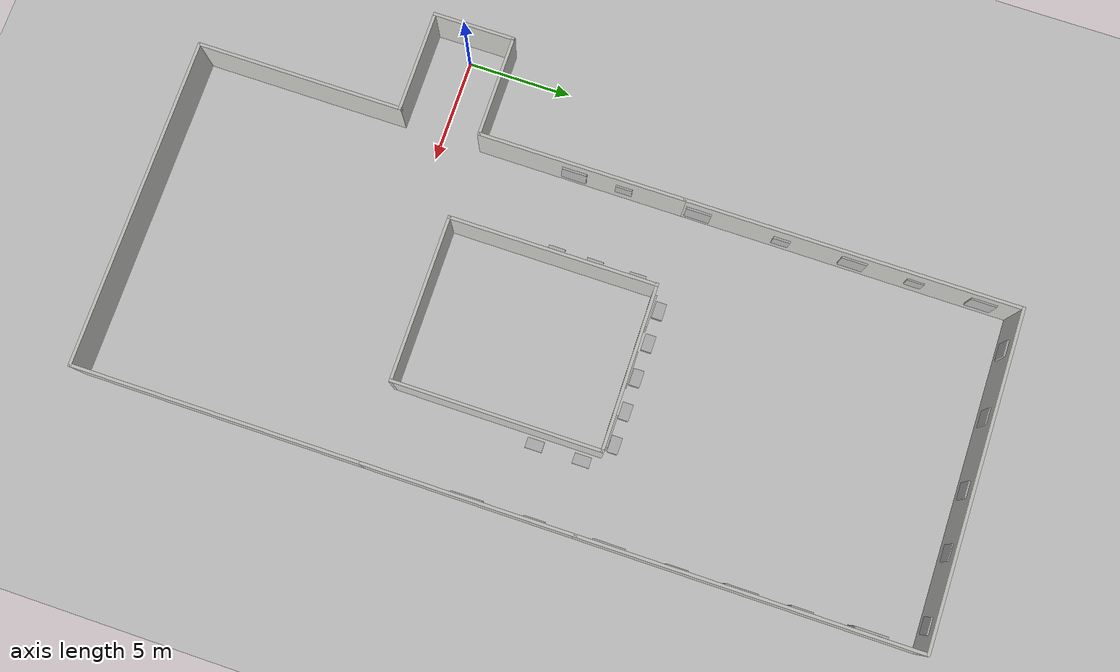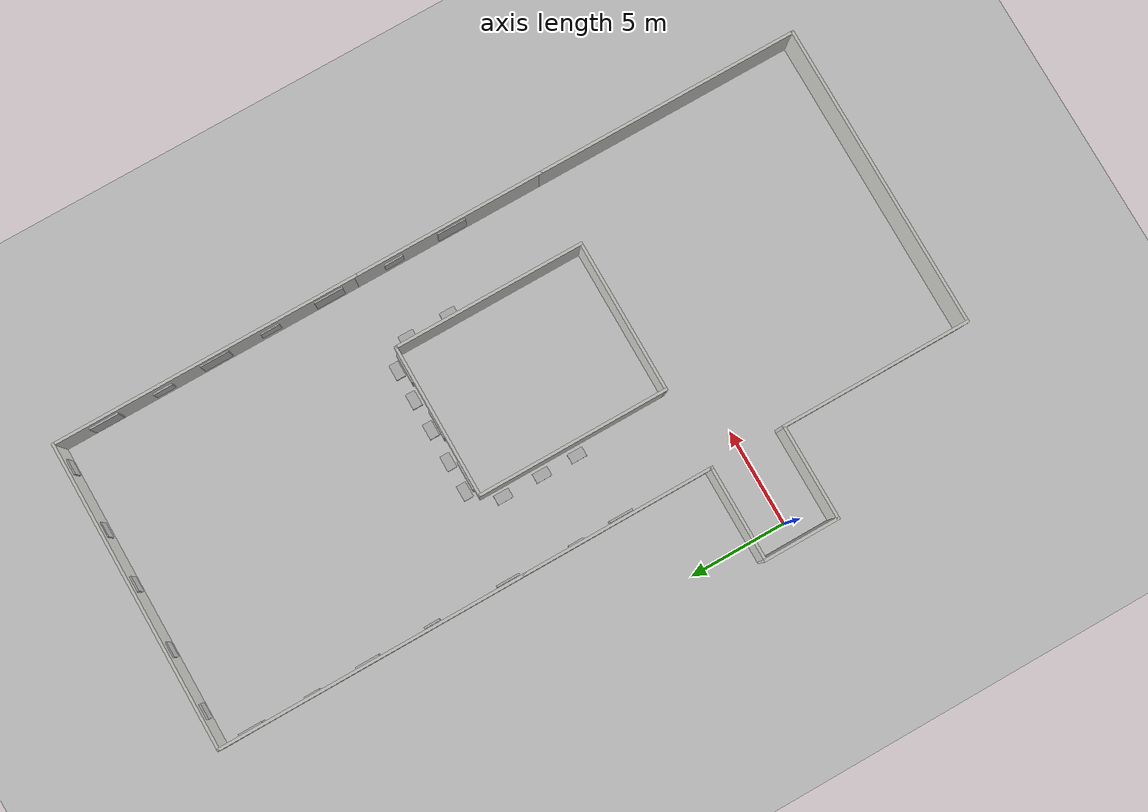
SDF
<sdf version="1.6">
 <world name="default">
  <model name="ground_plane">
   <static>1</static>
   <link name="link">
    <collision name="collision">
     <geometry><plane><normal>0 0 1</normal><size>100 100</size></plane></geometry>
     <surface>
      <contact><collide_bitmask>65535</collide_bitmask></contact>
      <friction><ode><mu>100</mu><mu2>50</mu2></ode></friction>
     </surface>
    </collision>
    <visual name="visual">
     <cast_shadows>0</cast_shadows>
     <geometry><plane><normal>0 0 1</normal><size>100 100</size></plane></geometry>
     <material>
      <script><uri>file://media/materials/scripts/gazebo.material</uri><name>Gazebo/Grey</name></script>
     </material>
    </visual>
   </link>
  </model>
  <model name="chair3_clone_4">
   <link name="link">
    <inertial>
     <mass>3</mass>
     <inertia><ixx>1</ixx><ixy>0</ixy><ixz>0</ixz><iyy>1</iyy><iyz>0</iyz><izz>1</izz></inertia>
    </inertial>
    <collision name="left1">
     <pose>0 0.225 0.2 0 -0 1.57</pose>
     <geometry><box><size>0.05 0.05 0.2</size></box></geometry>
    </collision>
    <visual name="visual1">
     <pose>0 0.225 0.2 0 -0 1.57</pose>
     <geometry><box><size>0.05 0.05 0.2</size></box></geometry>
     <material>
      <script>
       <uri>model://chair3/materials/test_texture_leg.material</uri>
       <name>TestTexturechairleg3</name>
      </script>
     </material>
    </visual>
    <collision name="right1">
     <pose>0.75 0.225 0.2 0 -0 1.57</pose>
     <geometry><box><size>0.05 0.05 0.2</size></box></geometry>
    </collision>
    <visual name="visual2">
     <pose>0.75 0.225 0.2 0 -0 1.57</pose>
     <geometry><box><size>0.05 0.05 0.2</size></box></geometry>
     <material>
      <script>
       <uri>model://chair3/materials/test_texture_leg.material</uri>
       <name>TestTexturechairleg3</name>
      </script>
     </material>
    </visual>
    <collision name="left2">
     <pose>0 -0.225 0.2 0 -0 1.57</pose>
     <geometry><box><size>0.05 0.05 0.2</size></box></geometry>
    </collision>
    <visual name="visual3">
     <pose>0 -0.225 0.2 0 -0 1.57</pose>
     <geometry><box><size>0.05 0.05 0.2</size></box></geometry>
     <material>
      <script>
       <uri>model://chair3/materials/test_texture_leg.material</uri>
       <name>TestTexturechairleg3</name>
      </script>
     </material>
    </visual>
    <collision name="right2">
     <pose>0.75 -0.225 0.2 0 -0 1.57</pose>
     <geometry><box><size>0.05 0.05 0.2</size></box></geometry>
    </collision>
    <visual name="visual4">
     <pose>0.75 -0.225 0.2 0 -0 1.57</pose>
     <geometry><box><size>0.05 0.05 0.2</size></box></geometry>
     <material>
      <script>
       <uri>model://chair3/materials/test_texture_leg.material</uri>
       <name>TestTexturechairleg3</name>
      </script>
     </material>
    </visual>
    <collision name="top">
     <pose>0.375 0 0.375 0 -0 0</pose>
     <geometry><box><size>0.8 0.5 0.05</size></box></geometry>
    </collision>
    <visual name="visual11">
     <pose>0.375 0 0.375 0 -0 0</pose>
     <geometry><box><size>0.8 0.5 0.05</size></box></geometry>
     <material>
      <script>
       <uri>model://chair3/materials/test_texture_plane.material</uri>
       <name>TestTexturechairplane3</name>
      </script>
     </material>
    </visual>
    <collision name="top2">
     <pose>0.375 0 0.325 0 -0 0</pose>
     <geometry><box><size>0.8 0.5 0.05</size></box></geometry>
    </collision>
    <visual name="visual12">
     <pose>0.375 0 0.325 0 -0 0</pose>
     <geometry><box><size>0.8 0.5 0.05</size></box></geometry>
     <material>
      <script>
       <uri>model://chair3/materials/test_texture_leg.material</uri>
       <name>TestTexturechairleg3</name>
      </script>
     </material>
    </visual>
   </link>
   <pose>7.58346 6.47339 -0.090003 -1e-06 -0 1.56992</pose>
  </model>
  <model name="art10">
   <static>1</static>
   <pose>19.6761 19.3333 1.42373 0 -0 1.57</pose>
   <link name="link">
    <inertial>
     <mass>1</mass>
     <inertia><ixx>0.083</ixx><ixy>0</ixy><ixz>0</ixz><iyy>0.083</iyy><iyz>0</iyz><izz>0.083</izz></inertia>
    </inertial>
    <collision name="collision"><geometry><box><size>1.5 0.1 1.5</size></box></geometry></collision>
    <visual name="visual">
     <geometry><box><size>1.5 0.1 1.5</size></box></geometry>
     <material>
      <script><uri>model://art10/materials/test_texture10.material</uri><name>TestTexture10</name></script>
     </material>
    </visual>
   </link>
  </model>
  <model name="art5">
   <static>1</static>
   <pose>5.74877 27.5112 1.29284 0 -0 0</pose>
   <link name="link">
    <inertial>
     <mass>1</mass>
     <inertia><ixx>0.083</ixx><ixy>0</ixy><ixz>0</ixz><iyy>0.083</iyy><iyz>0</iyz><izz>0.083</izz></inertia>
    </inertial>
    <collision name="collision"><geometry><box><size>0.8 0.1 1.2</size></box></geometry></collision>
    <visual name="visual">
     <geometry><box><size>0.8 0.1 1.2</size></box></geometry>
     <material>
      <script><uri>model://art5/materials/test_texture5.material</uri><name>TestTexture5</name></script>
     </material>
    </visual>
   </link>
  </model>
  <model name="art7">
   <static>1</static>
   <pose>4.0398 8.9814 1.28154 0 0 -1.5637</pose>
   <link name="link">
    <inertial>
     <mass>1</mass>
     <inertia><ixx>0.083</ixx><ixy>0</ixy><ixz>0</ixz><iyy>0.083</iyy><iyz>0</iyz><izz>0.083</izz></inertia>
    </inertial>
    <collision name="collision"><geometry><box><size>0.8 0.1 0.8</size></box></geometry></collision>
    <visual name="visual">
     <geometry><box><size>0.8 0.1 0.8</size></box></geometry>
     <material>
      <script><uri>model://art7/materials/test_texture7.material</uri><name>TestTexture7</name></script>
     </material>
    </visual>
   </link>
  </model>
  <model name="art9">
   <static>1</static>
   <pose>14.9277 11.8871 1.32882 0 -0 0</pose>
   <link name="link">
    <inertial>
     <mass>1</mass>
     <inertia><ixx>0.083</ixx><ixy>0</ixy><ixz>0</ixz><iyy>0.083</iyy><iyz>0</iyz><izz>0.083</izz></inertia>
    </inertial>
    <collision name="collision"><geometry><box><size>1.5 0.1 1.5</size></box></geometry></collision>
    <visual name="visual">
     <geometry><box><size>1.5 0.1 1.5</size></box></geometry>
     <material>
      <script><uri>model://art9/materials/test_texture9.material</uri><name>TestTexture9</name></script>
     </material>
    </visual>
   </link>
  </model>
  <model name="art4_clone">
   <static>1</static>
   <pose>4.07892 6.58142 1.30656 0 -0 1.57</pose>
   <link name="link">
    <inertial>
     <mass>1</mass>
     <inertia><ixx>0.083</ixx><ixy>0</ixy><ixz>0</ixz><iyy>0.083</iyy><iyz>0</iyz><izz>0.083</izz></inertia>
    </inertial>
    <collision name="collision"><geometry><box><size>1.2 0.1 1.2</size></box></geometry></collision>
    <visual name="visual">
     <geometry><box><size>1.2 0.1 1.2</size></box></geometry>
     <material>
      <script><uri>model://art4/materials/test_texture4.material</uri><name>TestTexture4</name></script>
     </material>
    </visual>
   </link>
  </model>
  <model name="art4_clone_clone">
   <static>1</static>
   <pose>4.07996 12.5675 1.30656 0 -0 1.57</pose>
   <link name="link">
    <inertial>
     <mass>1</mass>
     <inertia><ixx>0.083</ixx><ixy>0</ixy><ixz>0</ixz><iyy>0.083</iyy><iyz>0</iyz><izz>0.083</izz></inertia>
    </inertial>
    <collision name="collision"><geometry><box><size>1.2 0.1 1.2</size></box></geometry></collision>
    <visual name="visual">
     <geometry><box><size>1.2 0.1 1.2</size></box></geometry>
     <material>
      <script><uri>model://art4/materials/test_texture4.material</uri><name>TestTexture4</name></script>
     </material>
    </visual>
   </link>
  </model>
  <model name="art4_clone_clone_clone_clone">
   <static>1</static>
   <pose>4.04204 19.9663 1.30656 0 -0 1.57</pose>
   <link name="link">
    <inertial>
     <mass>1</mass>
     <inertia><ixx>0.083</ixx><ixy>0</ixy><ixz>0</ixz><iyy>0.083</iyy><iyz>0</iyz><izz>0.083</izz></inertia>
    </inertial>
    <collision name="collision"><geometry><box><size>1.2 0.1 1.2</size></box></geometry></collision>
    <visual name="visual">
     <geometry><box><size>1.2 0.1 1.2</size></box></geometry>
     <material>
      <script><uri>model://art4/materials/test_texture4.material</uri><name>TestTexture4</name></script>
     </material>
    </visual>
   </link>
  </model>
  <model name="art5_clone">
   <static>1</static>
   <pose>8.96533 27.5376 1.29284 0 -0 0</pose>
   <link name="link">
    <inertial>
     <mass>1</mass>
     <inertia><ixx>0.083</ixx><ixy>0</ixy><ixz>0</ixz><iyy>0.083</iyy><iyz>0</iyz><izz>0.083</izz></inertia>
    </inertial>
    <collision name="collision"><geometry><box><size>0.8 0.1 1.2</size></box></geometry></collision>
    <visual name="visual">
     <geometry><box><size>0.8 0.1 1.2</size></box></geometry>
     <material>
      <script><uri>model://art5/materials/test_texture5.material</uri><name>TestTexture5</name></script>
     </material>
    </visual>
   </link>
  </model>
  <model name="art5_clone_0">
   <static>1</static>
   <pose>12.392 27.5199 1.29284 0 -0 0</pose>
   <link name="link">
    <inertial>
     <mass>1</mass>
     <inertia><ixx>0.083</ixx><ixy>0</ixy><ixz>0</ixz><iyy>0.083</iyy><iyz>0</iyz><izz>0.083</izz></inertia>
    </inertial>
    <collision name="collision"><geometry><box><size>0.8 0.1 1.2</size></box></geometry></collision>
    <visual name="visual">
     <geometry><box><size>0.8 0.1 1.2</size></box></geometry>
     <material>
      <script><uri>model://art5/materials/test_texture5.material</uri><name>TestTexture5</name></script>
     </material>
    </visual>
   </link>
  </model>
  <model name="art5_clone_1">
   <static>1</static>
   <pose>15.2645 27.5529 1.29284 0 -0 0</pose>
   <link name="link">
    <inertial>
     <mass>1</mass>
     <inertia><ixx>0.083</ixx><ixy>0</ixy><ixz>0</ixz><iyy>0.083</iyy><iyz>0</iyz><izz>0.083</izz></inertia>
    </inertial>
    <collision name="collision"><geometry><box><size>0.8 0.1 1.2</size></box></geometry></collision>
    <visual name="visual">
     <geometry><box><size>0.8 0.1 1.2</size></box></geometry>
     <material>
      <script><uri>model://art5/materials/test_texture5.material</uri><name>TestTexture5</name></script>
     </material>
    </visual>
   </link>
  </model>
  <model name="art5_clone_2">
   <static>1</static>
   <pose>18.5803 27.524 1.29284 0 -0 0</pose>
   <link name="link">
    <inertial>
     <mass>1</mass>
     <inertia><ixx>0.083</ixx><ixy>0</ixy><ixz>0</ixz><iyy>0.083</iyy><iyz>0</iyz><izz>0.083</izz></inertia>
    </inertial>
    <collision name="collision"><geometry><box><size>0.8 0.1 1.2</size></box></geometry></collision>
    <visual name="visual">
     <geometry><box><size>0.8 0.1 1.2</size></box></geometry>
     <material>
      <script><uri>model://art5/materials/test_texture5.material</uri><name>TestTexture5</name></script>
     </material>
    </visual>
   </link>
  </model>
  <model name="art10_clone_0">
   <static>1</static>
   <pose>19.667 13.3108 1.399 0 -0 1.57</pose>
   <link name="link">
    <inertial>
     <mass>1</mass>
     <inertia><ixx>0.083</ixx><ixy>0</ixy><ixz>0</ixz><iyy>0.083</iyy><iyz>0</iyz><izz>0.083</izz></inertia>
    </inertial>
    <collision name="collision"><geometry><box><size>1.5 0.1 1.5</size></box></geometry></collision>
    <visual name="visual">
     <geometry><box><size>1.5 0.1 1.5</size></box></geometry>
     <material>
      <script><uri>model://art10/materials/test_texture10.material</uri><name>TestTexture10</name></script>
     </material>
    </visual>
   </link>
  </model>
  <model name="art10_clone_1_clone">
   <static>1</static>
   <pose>19.6757 6.74799 1.399 0 -0 1.57</pose>
   <link name="link">
    <inertial>
     <mass>1</mass>
     <inertia><ixx>0.083</ixx><ixy>0</ixy><ixz>0</ixz><iyy>0.083</iyy><iyz>0</iyz><izz>0.083</izz></inertia>
    </inertial>
    <collision name="collision"><geometry><box><size>1.5 0.1 1.5</size></box></geometry></collision>
    <visual name="visual">
     <geometry><box><size>1.5 0.1 1.5</size></box></geometry>
     <material>
      <script><uri>model://art10/materials/test_texture10.material</uri><name>TestTexture10</name></script>
     </material>
    </visual>
   </link>
  </model>
  <model name="art7_clone">
   <static>1</static>
   <pose>4.08486 16.5609 1.28154 0 0 -1.5637</pose>
   <link name="link">
    <inertial>
     <mass>1</mass>
     <inertia><ixx>0.083</ixx><ixy>0</ixy><ixz>0</ixz><iyy>0.083</iyy><iyz>0</iyz><izz>0.083</izz></inertia>
    </inertial>
    <collision name="collision"><geometry><box><size>0.8 0.1 0.8</size></box></geometry></collision>
    <visual name="visual">
     <geometry><box><size>0.8 0.1 0.8</size></box></geometry>
     <material>
      <script><uri>model://art7/materials/test_texture7.material</uri><name>TestTexture7</name></script>
     </material>
    </visual>
   </link>
  </model>
  <model name="art9_clone">
   <static>1</static>
   <pose>11.9392 11.8718 1.32882 0 -0 0</pose>
   <link name="link">
    <inertial>
     <mass>1</mass>
     <inertia><ixx>0.083</ixx><ixy>0</ixy><ixz>0</ixz><iyy>0.083</iyy><iyz>0</iyz><izz>0.083</izz></inertia>
    </inertial>
    <collision name="collision"><geometry><box><size>1.5 0.1 1.5</size></box></geometry></collision>
    <visual name="visual">
     <geometry><box><size>1.5 0.1 1.5</size></box></geometry>
     <material>
      <script><uri>model://art9/materials/test_texture9.material</uri><name>TestTexture9</name></script>
     </material>
    </visual>
   </link>
  </model>
  <model name="art9_clone_0">
   <static>1</static>
   <pose>9.20239 11.8915 1.32882 0 -0 0</pose>
   <link name="link">
    <inertial>
     <mass>1</mass>
     <inertia><ixx>0.083</ixx><ixy>0</ixy><ixz>0</ixz><iyy>0.083</iyy><iyz>0</iyz><izz>0.083</izz></inertia>
    </inertial>
    <collision name="collision"><geometry><box><size>1.5 0.1 1.5</size></box></geometry></collision>
    <visual name="visual">
     <geometry><box><size>1.5 0.1 1.5</size></box></geometry>
     <material>
      <script><uri>model://art9/materials/test_texture9.material</uri><name>TestTexture9</name></script>
     </material>
    </visual>
   </link>
  </model>
  <model name="art8">
   <static>1</static>
   <pose>19.679 16.456 1.35644 0 -0 1.57181</pose>
   <link name="link">
    <inertial>
     <mass>1</mass>
     <inertia><ixx>0.083</ixx><ixy>0</ixy><ixz>0</ixz><iyy>0.083</iyy><iyz>0</iyz><izz>0.083</izz></inertia>
    </inertial>
    <collision name="collision"><geometry><box><size>1 0.1 1</size></box></geometry></collision>
    <visual name="visual">
     <geometry><box><size>1 0.1 1</size></box></geometry>
     <material>
      <script><uri>model://art8/materials/test_texture8.material</uri><name>TestTexture8</name></script>
     </material>
    </visual>
   </link>
  </model>
  <model name="art8_clone">
   <static>1</static>
   <pose>19.664 9.86122 1.35644 0 -0 1.57181</pose>
   <link name="link">
    <inertial>
     <mass>1</mass>
     <inertia><ixx>0.083</ixx><ixy>0</ixy><ixz>0</ixz><iyy>0.083</iyy><iyz>0</iyz><izz>0.083</izz></inertia>
    </inertial>
    <collision name="collision"><geometry><box><size>1 0.1 1</size></box></geometry></collision>
    <visual name="visual">
     <geometry><box><size>1 0.1 1</size></box></geometry>
     <material>
      <script><uri>model://art8/materials/test_texture8.material</uri><name>TestTexture8</name></script>
     </material>
    </visual>
   </link>
  </model>
  <model name="dtaka_museum1_1">
   <pose>9.4253 7.9286 0 0 -0 0</pose>
   <link name="Wall_100">
    <collision name="Wall_100_Collision">
     <geometry><box><size>16 0.15 2.5</size></box></geometry>
     <pose>0 0 1.25 0 -0 0</pose>
    </collision>
    <visual name="Wall_100_Visual">
     <pose>0 0 1.25 0 -0 0</pose>
     <geometry><box><size>16 0.15 2.5</size></box></geometry>
     <material>
      <script><uri>file://media/materials/scripts/gazebo.material</uri><name>Gazebo/CeilingTiled</name></script>
      <ambient>1 1 1 1</ambient>
     </material>
     <meta><layer>0</layer></meta>
    </visual>
    <pose>2.425 -19.7 0 0 -0 0</pose>
   </link>
   <link name="Wall_102">
    <collision name="Wall_102_Collision">
     <geometry><box><size>13.85 0.15 2.5</size></box></geometry>
     <pose>0 0 1.25 0 -0 0</pose>
    </collision>
    <visual name="Wall_102_Visual">
     <pose>0 0 1.25 0 -0 0</pose>
     <geometry><box><size>13.85 0.15 2.5</size></box></geometry>
     <material>
      <script><uri>file://media/materials/scripts/gazebo.material</uri><name>Gazebo/CeilingTiled</name></script>
      <ambient>1 1 1 1</ambient>
     </material>
     <meta><layer>0</layer></meta>
    </visual>
    <pose>10.35 -12.85 0 0 -0 1.5708</pose>
   </link>
   <link name="Wall_104">
    <collision name="Wall_104_Collision">
     <geometry><box><size>10 0.15 2.5</size></box></geometry>
     <pose>0 0 1.25 0 -0 0</pose>
    </collision>
    <visual name="Wall_104_Visual">
     <pose>0 0 1.25 0 -0 0</pose>
     <geometry><box><size>10 0.15 2.5</size></box></geometry>
     <material>
      <script><uri>file://media/materials/scripts/gazebo.material</uri><name>Gazebo/CeilingTiled</name></script>
      <ambient>1 1 1 1</ambient>
     </material>
     <meta><layer>0</layer></meta>
    </visual>
    <pose>10.35 -1.075 0 0 -0 1.5708</pose>
   </link>
   <link name="Wall_106">
    <collision name="Wall_106_Collision">
     <geometry><box><size>16 0.15 2.5</size></box></geometry>
     <pose>0 0 1.25 0 -0 0</pose>
    </collision>
    <visual name="Wall_106_Visual">
     <pose>0 0 1.25 0 -0 0</pose>
     <geometry><box><size>16 0.15 2.5</size></box></geometry>
     <material>
      <script><uri>file://media/materials/scripts/gazebo.material</uri><name>Gazebo/CeilingTiled</name></script>
      <ambient>1 1 1 1</ambient>
     </material>
     <meta><layer>0</layer></meta>
    </visual>
    <pose>10.35 11.775 0 0 -0 1.5708</pose>
   </link>
   <link name="Wall_108">
    <collision name="Wall_108_Collision">
     <geometry><box><size>16 0.15 2.5</size></box></geometry>
     <pose>0 0 1.25 0 -0 0</pose>
    </collision>
    <visual name="Wall_108_Visual">
     <pose>0 0 1.25 0 -0 0</pose>
     <geometry><box><size>16 0.15 2.5</size></box></geometry>
     <material>
      <script><uri>file://media/materials/scripts/gazebo.material</uri><name>Gazebo/CeilingTiled</name></script>
      <ambient>1 1 1 1</ambient>
     </material>
     <meta><layer>0</layer></meta>
    </visual>
    <pose>2.425 19.7 0 0 -0 3.14159</pose>
   </link>
   <link name="Wall_110">
    <collision name="Wall_110_Collision">
     <geometry><box><size>16 0.15 2.5</size></box></geometry>
     <pose>0 0 1.25 0 -0 0</pose>
    </collision>
    <visual name="Wall_110_Visual">
     <pose>0 0 1.25 0 -0 0</pose>
     <geometry><box><size>16 0.15 2.5</size></box></geometry>
     <material>
      <script><uri>file://media/materials/scripts/gazebo.material</uri><name>Gazebo/CeilingTiled</name></script>
      <ambient>1 1 1 1</ambient>
     </material>
     <meta><layer>0</layer></meta>
    </visual>
    <pose>-5.5 11.775 0 0 -0 -1.5708</pose>
   </link>
   <link name="Wall_112">
    <collision name="Wall_112_Collision">
     <geometry><box><size>8 0.15 2.5</size></box></geometry>
     <pose>0 0 1.25 0 -0 0</pose>
    </collision>
    <visual name="Wall_112_Visual">
     <pose>0 0 1.25 0 -0 0</pose>
     <geometry><box><size>8 0.15 2.5</size></box></geometry>
     <material>
      <script><uri>file://media/materials/scripts/gazebo.material</uri><name>Gazebo/CeilingTiled</name></script>
      <ambient>1 1 1 1</ambient>
     </material>
     <meta><layer>0</layer></meta>
    </visual>
    <pose>2.575 -6 0 0 -0 0</pose>
   </link>
   <link name="Wall_114">
    <collision name="Wall_114_Collision">
     <geometry><box><size>10 0.15 2.5</size></box></geometry>
     <pose>0 0 1.25 0 -0 0</pose>
    </collision>
    <visual name="Wall_114_Visual">
     <pose>0 0 1.25 0 -0 0</pose>
     <geometry><box><size>10 0.15 2.5</size></box></geometry>
     <material>
      <script><uri>file://media/materials/scripts/gazebo.material</uri><name>Gazebo/CeilingTiled</name></script>
      <ambient>1 1 1 1</ambient>
     </material>
     <meta><layer>0</layer></meta>
    </visual>
    <pose>6.5 -1.075 0 0 -0 -1.5708</pose>
   </link>
   <link name="Wall_116">
    <collision name="Wall_116_Collision">
     <geometry><box><size>8 0.15 2.5</size></box></geometry>
     <pose>0 0 1.25 0 -0 0</pose>
    </collision>
    <visual name="Wall_116_Visual">
     <pose>0 0 1.25 0 -0 0</pose>
     <geometry><box><size>8 0.15 2.5</size></box></geometry>
     <material>
      <script><uri>file://media/materials/scripts/gazebo.material</uri><name>Gazebo/CeilingTiled</name></script>
      <ambient>1 1 1 1</ambient>
     </material>
     <meta><layer>0</layer></meta>
    </visual>
    <pose>2.575 3.85 0 0 -0 3.14159</pose>
   </link>
   <link name="Wall_118">
    <collision name="Wall_118_Collision">
     <geometry><box><size>10 0.15 2.5</size></box></geometry>
     <pose>0 0 1.25 0 -0 0</pose>
    </collision>
    <visual name="Wall_118_Visual">
     <pose>0 0 1.25 0 -0 0</pose>
     <geometry><box><size>10 0.15 2.5</size></box></geometry>
     <material>
      <script><uri>file://media/materials/scripts/gazebo.material</uri><name>Gazebo/CeilingTiled</name></script>
      <ambient>1 1 1 1</ambient>
     </material>
     <meta><layer>0</layer></meta>
    </visual>
    <pose>-1.35 -1.075 0 0 -0 1.5708</pose>
   </link>
   <link name="Wall_82">
    <collision name="Wall_82_Collision">
     <geometry><box><size>4 0.15 2.5</size></box></geometry>
     <pose>0 0 1.25 0 -0 0</pose>
    </collision>
    <visual name="Wall_82_Visual">
     <pose>0 0 1.25 0 -0 0</pose>
     <geometry><box><size>4 0.15 2.5</size></box></geometry>
     <material>
      <script><uri>file://media/materials/scripts/gazebo.material</uri><name>Gazebo/CeilingTiled</name></script>
      <ambient>1 1 1 1</ambient>
     </material>
     <meta><layer>0</layer></meta>
    </visual>
    <pose>-10.35 -7.925 0 0 -0 -1.5708</pose>
   </link>
   <link name="Wall_84">
    <collision name="Wall_84_Collision">
     <geometry><box><size>5 0.15 2.5</size></box></geometry>
     <pose>0 0 1.25 0 -0 0</pose>
    </collision>
    <visual name="Wall_84_Visual">
     <pose>0 0 1.25 0 -0 0</pose>
     <geometry><box><size>5 0.15 2.5</size></box></geometry>
     <material>
      <script><uri>file://media/materials/scripts/gazebo.material</uri><name>Gazebo/CeilingTiled</name></script>
      <ambient>1 1 1 1</ambient>
     </material>
     <meta><layer>0</layer></meta>
    </visual>
    <pose>-7.925 -6 0 0 -0 0</pose>
   </link>
   <link name="Wall_90">
    <collision name="Wall_90_Collision">
     <geometry><box><size>10 0.15 2.5</size></box></geometry>
     <pose>0 0 1.25 0 -0 0</pose>
    </collision>
    <visual name="Wall_90_Visual">
     <pose>0 0 1.25 0 -0 0</pose>
     <geometry><box><size>10 0.15 2.5</size></box></geometry>
     <material>
      <script><uri>file://media/materials/scripts/gazebo.material</uri><name>Gazebo/CeilingTiled</name></script>
      <ambient>1 1 1 1</ambient>
     </material>
     <meta><layer>0</layer></meta>
    </visual>
    <pose>-5.5 -1.075 0 0 -0 1.5708</pose>
   </link>
   <link name="Wall_96">
    <collision name="Wall_96_Collision">
     <geometry><box><size>5 0.15 2.5</size></box></geometry>
     <pose>0 0 1.25 0 -0 0</pose>
    </collision>
    <visual name="Wall_96_Visual">
     <pose>0 0 1.25 0 -0 0</pose>
     <geometry><box><size>5 0.15 2.5</size></box></geometry>
     <material>
      <script><uri>file://media/materials/scripts/gazebo.material</uri><name>Gazebo/CeilingTiled</name></script>
      <ambient>1 1 1 1</ambient>
     </material>
     <meta><layer>0</layer></meta>
    </visual>
    <pose>-7.925 -9.85 0 0 -0 0</pose>
   </link>
   <link name="Wall_98">
    <collision name="Wall_98_Collision">
     <geometry><box><size>10 0.15 2.5</size></box></geometry>
     <pose>0 0 1.25 0 -0 0</pose>
    </collision>
    <visual name="Wall_98_Visual">
     <pose>0 0 1.25 0 -0 0</pose>
     <geometry><box><size>10 0.15 2.5</size></box></geometry>
     <material>
      <script><uri>file://media/materials/scripts/gazebo.material</uri><name>Gazebo/CeilingTiled</name></script>
      <ambient>1 1 1 1</ambient>
     </material>
     <meta><layer>0</layer></meta>
    </visual>
    <pose>-5.5 -14.775 0 0 -0 -1.5708</pose>
   </link>
   <static>1</static>
  </model>
  <model name="chair3_clone_4_clone">
   <link name="link">
    <inertial>
     <mass>3</mass>
     <inertia><ixx>1</ixx><ixy>0</ixy><ixz>0</ixz><iyy>1</iyy><iyz>0</iyz><izz>1</izz></inertia>
    </inertial>
    <collision name="left1">
     <pose>0 0.225 0.2 0 -0 1.57</pose>
     <geometry><box><size>0.05 0.05 0.2</size></box></geometry>
    </collision>
    <visual name="visual1">
     <pose>0 0.225 0.2 0 -0 1.57</pose>
     <geometry><box><size>0.05 0.05 0.2</size></box></geometry>
     <material>
      <script>
       <uri>model://chair3/materials/test_texture_leg.material</uri>
       <name>TestTexturechairleg3</name>
      </script>
     </material>
    </visual>
    <collision name="right1">
     <pose>0.75 0.225 0.2 0 -0 1.57</pose>
     <geometry><box><size>0.05 0.05 0.2</size></box></geometry>
    </collision>
    <visual name="visual2">
     <pose>0.75 0.225 0.2 0 -0 1.57</pose>
     <geometry><box><size>0.05 0.05 0.2</size></box></geometry>
     <material>
      <script>
       <uri>model://chair3/materials/test_texture_leg.material</uri>
       <name>TestTexturechairleg3</name>
      </script>
     </material>
    </visual>
    <collision name="left2">
     <pose>0 -0.225 0.2 0 -0 1.57</pose>
     <geometry><box><size>0.05 0.05 0.2</size></box></geometry>
    </collision>
    <visual name="visual3">
     <pose>0 -0.225 0.2 0 -0 1.57</pose>
     <geometry><box><size>0.05 0.05 0.2</size></box></geometry>
     <material>
      <script>
       <uri>model://chair3/materials/test_texture_leg.material</uri>
       <name>TestTexturechairleg3</name>
      </script>
     </material>
    </visual>
    <collision name="right2">
     <pose>0.75 -0.225 0.2 0 -0 1.57</pose>
     <geometry><box><size>0.05 0.05 0.2</size></box></geometry>
    </collision>
    <visual name="visual4">
     <pose>0.75 -0.225 0.2 0 -0 1.57</pose>
     <geometry><box><size>0.05 0.05 0.2</size></box></geometry>
     <material>
      <script>
       <uri>model://chair3/materials/test_texture_leg.material</uri>
       <name>TestTexturechairleg3</name>
      </script>
     </material>
    </visual>
    <collision name="top">
     <pose>0.375 0 0.375 0 -0 0</pose>
     <geometry><box><size>0.8 0.5 0.05</size></box></geometry>
    </collision>
    <visual name="visual11">
     <pose>0.375 0 0.375 0 -0 0</pose>
     <geometry><box><size>0.8 0.5 0.05</size></box></geometry>
     <material>
      <script>
       <uri>model://chair3/materials/test_texture_plane.material</uri>
       <name>TestTexturechairplane3</name>
      </script>
     </material>
    </visual>
    <collision name="top2">
     <pose>0.375 0 0.325 0 -0 0</pose>
     <geometry><box><size>0.8 0.5 0.05</size></box></geometry>
    </collision>
    <visual name="visual12">
     <pose>0.375 0 0.325 0 -0 0</pose>
     <geometry><box><size>0.8 0.5 0.05</size></box></geometry>
     <material>
      <script>
       <uri>model://chair3/materials/test_texture_leg.material</uri>
       <name>TestTexturechairleg3</name>
      </script>
     </material>
    </visual>
   </link>
   <pose>7.593 8.35852 -0.090002 -2e-06 -0 1.56997</pose>
  </model>
  <model name="chair3_clone_4_clone_0">
   <link name="link">
    <inertial>
     <mass>3</mass>
     <inertia><ixx>1</ixx><ixy>0</ixy><ixz>0</ixz><iyy>1</iyy><iyz>0</iyz><izz>1</izz></inertia>
    </inertial>
    <collision name="left1">
     <pose>0 0.225 0.2 0 -0 1.57</pose>
     <geometry><box><size>0.05 0.05 0.2</size></box></geometry>
    </collision>
    <visual name="visual1">
     <pose>0 0.225 0.2 0 -0 1.57</pose>
     <geometry><box><size>0.05 0.05 0.2</size></box></geometry>
     <material>
      <script>
       <uri>model://chair3/materials/test_texture_leg.material</uri>
       <name>TestTexturechairleg3</name>
      </script>
     </material>
    </visual>
    <collision name="right1">
     <pose>0.75 0.225 0.2 0 -0 1.57</pose>
     <geometry><box><size>0.05 0.05 0.2</size></box></geometry>
    </collision>
    <visual name="visual2">
     <pose>0.75 0.225 0.2 0 -0 1.57</pose>
     <geometry><box><size>0.05 0.05 0.2</size></box></geometry>
     <material>
      <script>
       <uri>model://chair3/materials/test_texture_leg.material</uri>
       <name>TestTexturechairleg3</name>
      </script>
     </material>
    </visual>
    <collision name="left2">
     <pose>0 -0.225 0.2 0 -0 1.57</pose>
     <geometry><box><size>0.05 0.05 0.2</size></box></geometry>
    </collision>
    <visual name="visual3">
     <pose>0 -0.225 0.2 0 -0 1.57</pose>
     <geometry><box><size>0.05 0.05 0.2</size></box></geometry>
     <material>
      <script>
       <uri>model://chair3/materials/test_texture_leg.material</uri>
       <name>TestTexturechairleg3</name>
      </script>
     </material>
    </visual>
    <collision name="right2">
     <pose>0.75 -0.225 0.2 0 -0 1.57</pose>
     <geometry><box><size>0.05 0.05 0.2</size></box></geometry>
    </collision>
    <visual name="visual4">
     <pose>0.75 -0.225 0.2 0 -0 1.57</pose>
     <geometry><box><size>0.05 0.05 0.2</size></box></geometry>
     <material>
      <script>
       <uri>model://chair3/materials/test_texture_leg.material</uri>
       <name>TestTexturechairleg3</name>
      </script>
     </material>
    </visual>
    <collision name="top">
     <pose>0.375 0 0.375 0 -0 0</pose>
     <geometry><box><size>0.8 0.5 0.05</size></box></geometry>
    </collision>
    <visual name="visual11">
     <pose>0.375 0 0.375 0 -0 0</pose>
     <geometry><box><size>0.8 0.5 0.05</size></box></geometry>
     <material>
      <script>
       <uri>model://chair3/materials/test_texture_plane.material</uri>
       <name>TestTexturechairplane3</name>
      </script>
     </material>
    </visual>
    <collision name="top2">
     <pose>0.375 0 0.325 0 -0 0</pose>
     <geometry><box><size>0.8 0.5 0.05</size></box></geometry>
    </collision>
    <visual name="visual12">
     <pose>0.375 0 0.325 0 -0 0</pose>
     <geometry><box><size>0.8 0.5 0.05</size></box></geometry>
     <material>
      <script>
       <uri>model://chair3/materials/test_texture_leg.material</uri>
       <name>TestTexturechairleg3</name>
      </script>
     </material>
    </visual>
   </link>
   <pose>7.60518 10.4445 -0.090008 2e-06 -0 1.56997</pose>
  </model>
  <model name="chair1_9_clone_1_clone">
   <link name="link">
    <inertial>
     <mass>3</mass>
     <inertia><ixx>1</ixx><ixy>0</ixy><ixz>0</ixz><iyy>1</iyy><iyz>0</iyz><izz>1</izz></inertia>
    </inertial>
    <collision name="left">
     <pose>0 0 0.2 0 -0 1.57</pose>
     <geometry><box><size>0.5 0.05 0.2</size></box></geometry>
    </collision>
    <visual name="visual1">
     <pose>0 0 0.2 0 -0 1.57</pose>
     <geometry><box><size>0.5 0.05 0.2</size></box></geometry>
     <material>
      <script>
       <uri>model://chair1/materials/test_texture_leg.material</uri>
       <name>TestTexturechairleg1</name>
      </script>
     </material>
    </visual>
    <collision name="right">
     <pose>0.75 0 0.2 0 -0 1.57</pose>
     <geometry><box><size>0.5 0.05 0.2</size></box></geometry>
    </collision>
    <visual name="visual2">
     <pose>0.75 0 0.2 0 -0 1.57</pose>
     <geometry><box><size>0.5 0.05 0.2</size></box></geometry>
     <material>
      <script>
       <uri>model://chair1/materials/test_texture_leg.material</uri>
       <name>TestTexturechairleg1</name>
      </script>
     </material>
    </visual>
    <collision name="top">
     <pose>0.375 0 0.325 0 -0 0</pose>
     <geometry><box><size>0.8 0.5 0.05</size></box></geometry>
    </collision>
    <visual name="visual3">
     <pose>0.375 0 0.325 0 -0 0</pose>
     <geometry><box><size>0.8 0.5 0.05</size></box></geometry>
     <material>
      <script>
       <uri>model://chair1/materials/test_texture_plane.material</uri>
       <name>TestTexturechairplane1</name>
      </script>
     </material>
    </visual>
   </link>
   <pose>16.4034 8.41091 -0.090007 -2e-06 -1e-06 1.57132</pose>
  </model>
  <model name="chair1_9_clone_1_clone_0">
   <link name="link">
    <inertial>
     <mass>3</mass>
     <inertia><ixx>1</ixx><ixy>0</ixy><ixz>0</ixz><iyy>1</iyy><iyz>0</iyz><izz>1</izz></inertia>
    </inertial>
    <collision name="left">
     <pose>0 0 0.2 0 -0 1.57</pose>
     <geometry><box><size>0.5 0.05 0.2</size></box></geometry>
    </collision>
    <visual name="visual1">
     <pose>0 0 0.2 0 -0 1.57</pose>
     <geometry><box><size>0.5 0.05 0.2</size></box></geometry>
     <material>
      <script>
       <uri>model://chair1/materials/test_texture_leg.material</uri>
       <name>TestTexturechairleg1</name>
      </script>
     </material>
    </visual>
    <collision name="right">
     <pose>0.75 0 0.2 0 -0 1.57</pose>
     <geometry><box><size>0.5 0.05 0.2</size></box></geometry>
    </collision>
    <visual name="visual2">
     <pose>0.75 0 0.2 0 -0 1.57</pose>
     <geometry><box><size>0.5 0.05 0.2</size></box></geometry>
     <material>
      <script>
       <uri>model://chair1/materials/test_texture_leg.material</uri>
       <name>TestTexturechairleg1</name>
      </script>
     </material>
    </visual>
    <collision name="top">
     <pose>0.375 0 0.325 0 -0 0</pose>
     <geometry><box><size>0.8 0.5 0.05</size></box></geometry>
    </collision>
    <visual name="visual3">
     <pose>0.375 0 0.325 0 -0 0</pose>
     <geometry><box><size>0.8 0.5 0.05</size></box></geometry>
     <material>
      <script>
       <uri>model://chair1/materials/test_texture_plane.material</uri>
       <name>TestTexturechairplane1</name>
      </script>
     </material>
    </visual>
   </link>
   <pose>16.4013 10.6597 -0.090007 -2e-06 -1e-06 1.57132</pose>
  </model>
  <model name="chair1_3_clone">
   <link name="link">
    <inertial>
     <mass>3</mass>
     <inertia><ixx>1</ixx><ixy>0</ixy><ixz>0</ixz><iyy>1</iyy><iyz>0</iyz><izz>1</izz></inertia>
    </inertial>
    <collision name="left">
     <pose>0 0 0.2 0 -0 1.57</pose>
     <geometry><box><size>0.5 0.05 0.2</size></box></geometry>
    </collision>
    <visual name="visual1">
     <pose>0 0 0.2 0 -0 1.57</pose>
     <geometry><box><size>0.5 0.05 0.2</size></box></geometry>
     <material>
      <script>
       <uri>model://chair1/materials/test_texture_leg.material</uri>
       <name>TestTexturechairleg1</name>
      </script>
     </material>
    </visual>
    <collision name="right">
     <pose>0.75 0 0.2 0 -0 1.57</pose>
     <geometry><box><size>0.5 0.05 0.2</size></box></geometry>
    </collision>
    <visual name="visual2">
     <pose>0.75 0 0.2 0 -0 1.57</pose>
     <geometry><box><size>0.5 0.05 0.2</size></box></geometry>
     <material>
      <script>
       <uri>model://chair1/materials/test_texture_leg.material</uri>
       <name>TestTexturechairleg1</name>
      </script>
     </material>
    </visual>
    <collision name="top">
     <pose>0.375 0 0.325 0 -0 0</pose>
     <geometry><box><size>0.8 0.5 0.05</size></box></geometry>
    </collision>
    <visual name="visual3">
     <pose>0.375 0 0.325 0 -0 0</pose>
     <geometry><box><size>0.8 0.5 0.05</size></box></geometry>
     <material>
      <script>
       <uri>model://chair1/materials/test_texture_plane.material</uri>
       <name>TestTexturechairplane1</name>
      </script>
     </material>
    </visual>
   </link>
   <pose>11.6439 12.2324 -0.090007 -2e-06 -1e-06 0.001598</pose>
  </model>
  <model name="chair1_3_clone_0">
   <link name="link">
    <inertial>
     <mass>3</mass>
     <inertia><ixx>1</ixx><ixy>0</ixy><ixz>0</ixz><iyy>1</iyy><iyz>0</iyz><izz>1</izz></inertia>
    </inertial>
    <collision name="left">
     <pose>0 0 0.2 0 -0 1.57</pose>
     <geometry><box><size>0.5 0.05 0.2</size></box></geometry>
    </collision>
    <visual name="visual1">
     <pose>0 0 0.2 0 -0 1.57</pose>
     <geometry><box><size>0.5 0.05 0.2</size></box></geometry>
     <material>
      <script>
       <uri>model://chair1/materials/test_texture_leg.material</uri>
       <name>TestTexturechairleg1</name>
      </script>
     </material>
    </visual>
    <collision name="right">
     <pose>0.75 0 0.2 0 -0 1.57</pose>
     <geometry><box><size>0.5 0.05 0.2</size></box></geometry>
    </collision>
    <visual name="visual2">
     <pose>0.75 0 0.2 0 -0 1.57</pose>
     <geometry><box><size>0.5 0.05 0.2</size></box></geometry>
     <material>
      <script>
       <uri>model://chair1/materials/test_texture_leg.material</uri>
       <name>TestTexturechairleg1</name>
      </script>
     </material>
    </visual>
    <collision name="top">
     <pose>0.375 0 0.325 0 -0 0</pose>
     <geometry><box><size>0.8 0.5 0.05</size></box></geometry>
    </collision>
    <visual name="visual3">
     <pose>0.375 0 0.325 0 -0 0</pose>
     <geometry><box><size>0.8 0.5 0.05</size></box></geometry>
     <material>
      <script>
       <uri>model://chair1/materials/test_texture_plane.material</uri>
       <name>TestTexturechairplane1</name>
      </script>
     </material>
    </visual>
   </link>
   <pose>14.8828 12.2298 -0.090007 -2e-06 -1e-06 0.001598</pose>
  </model>
  <model name="chair1_3_clone_1">
   <link name="link">
    <inertial>
     <mass>3</mass>
     <inertia><ixx>1</ixx><ixy>0</ixy><ixz>0</ixz><iyy>1</iyy><iyz>0</iyz><izz>1</izz></inertia>
    </inertial>
    <collision name="left">
     <pose>0 0 0.2 0 -0 1.57</pose>
     <geometry><box><size>0.5 0.05 0.2</size></box></geometry>
    </collision>
    <visual name="visual1">
     <pose>0 0 0.2 0 -0 1.57</pose>
     <geometry><box><size>0.5 0.05 0.2</size></box></geometry>
     <material>
      <script>
       <uri>model://chair1/materials/test_texture_leg.material</uri>
       <name>TestTexturechairleg1</name>
      </script>
     </material>
    </visual>
    <collision name="right">
     <pose>0.75 0 0.2 0 -0 1.57</pose>
     <geometry><box><size>0.5 0.05 0.2</size></box></geometry>
    </collision>
    <visual name="visual2">
     <pose>0.75 0 0.2 0 -0 1.57</pose>
     <geometry><box><size>0.5 0.05 0.2</size></box></geometry>
     <material>
      <script>
       <uri>model://chair1/materials/test_texture_leg.material</uri>
       <name>TestTexturechairleg1</name>
      </script>
     </material>
    </visual>
    <collision name="top">
     <pose>0.375 0 0.325 0 -0 0</pose>
     <geometry><box><size>0.8 0.5 0.05</size></box></geometry>
    </collision>
    <visual name="visual3">
     <pose>0.375 0 0.325 0 -0 0</pose>
     <geometry><box><size>0.8 0.5 0.05</size></box></geometry>
     <material>
      <script>
       <uri>model://chair1/materials/test_texture_plane.material</uri>
       <name>TestTexturechairplane1</name>
      </script>
     </material>
    </visual>
   </link>
   <pose>13.2813 12.2335 -0.090007 -2e-06 -1e-06 0.001598</pose>
  </model>
  <model name="chair1_3_clone_2">
   <link name="link">
    <inertial>
     <mass>3</mass>
     <inertia><ixx>1</ixx><ixy>0</ixy><ixz>0</ixz><iyy>1</iyy><iyz>0</iyz><izz>1</izz></inertia>
    </inertial>
    <collision name="left">
     <pose>0 0 0.2 0 -0 1.57</pose>
     <geometry><box><size>0.5 0.05 0.2</size></box></geometry>
    </collision>
    <visual name="visual1">
     <pose>0 0 0.2 0 -0 1.57</pose>
     <geometry><box><size>0.5 0.05 0.2</size></box></geometry>
     <material>
      <script>
       <uri>model://chair1/materials/test_texture_leg.material</uri>
       <name>TestTexturechairleg1</name>
      </script>
     </material>
    </visual>
    <collision name="right">
     <pose>0.75 0 0.2 0 -0 1.57</pose>
     <geometry><box><size>0.5 0.05 0.2</size></box></geometry>
    </collision>
    <visual name="visual2">
     <pose>0.75 0 0.2 0 -0 1.57</pose>
     <geometry><box><size>0.5 0.05 0.2</size></box></geometry>
     <material>
      <script>
       <uri>model://chair1/materials/test_texture_leg.material</uri>
       <name>TestTexturechairleg1</name>
      </script>
     </material>
    </visual>
    <collision name="top">
     <pose>0.375 0 0.325 0 -0 0</pose>
     <geometry><box><size>0.8 0.5 0.05</size></box></geometry>
    </collision>
    <visual name="visual3">
     <pose>0.375 0 0.325 0 -0 0</pose>
     <geometry><box><size>0.8 0.5 0.05</size></box></geometry>
     <material>
      <script>
       <uri>model://chair1/materials/test_texture_plane.material</uri>
       <name>TestTexturechairplane1</name>
      </script>
     </material>
    </visual>
   </link>
   <pose>8.33079 12.2659 -0.090007 -2e-06 -1e-06 0.001598</pose>
  </model>
  <model name="chair1_3_clone_3">
   <link name="link">
    <inertial>
     <mass>3</mass>
     <inertia><ixx>1</ixx><ixy>0</ixy><ixz>0</ixz><iyy>1</iyy><iyz>0</iyz><izz>1</izz></inertia>
    </inertial>
    <collision name="left">
     <pose>0 0 0.2 0 -0 1.57</pose>
     <geometry><box><size>0.5 0.05 0.2</size></box></geometry>
    </collision>
    <visual name="visual1">
     <pose>0 0 0.2 0 -0 1.57</pose>
     <geometry><box><size>0.5 0.05 0.2</size></box></geometry>
     <material>
      <script>
       <uri>model://chair1/materials/test_texture_leg.material</uri>
       <name>TestTexturechairleg1</name>
      </script>
     </material>
    </visual>
    <collision name="right">
     <pose>0.75 0 0.2 0 -0 1.57</pose>
     <geometry><box><size>0.5 0.05 0.2</size></box></geometry>
    </collision>
    <visual name="visual2">
     <pose>0.75 0 0.2 0 -0 1.57</pose>
     <geometry><box><size>0.5 0.05 0.2</size></box></geometry>
     <material>
      <script>
       <uri>model://chair1/materials/test_texture_leg.material</uri>
       <name>TestTexturechairleg1</name>
      </script>
     </material>
    </visual>
    <collision name="top">
     <pose>0.375 0 0.325 0 -0 0</pose>
     <geometry><box><size>0.8 0.5 0.05</size></box></geometry>
    </collision>
    <visual name="visual3">
     <pose>0.375 0 0.325 0 -0 0</pose>
     <geometry><box><size>0.8 0.5 0.05</size></box></geometry>
     <material>
      <script>
       <uri>model://chair1/materials/test_texture_plane.material</uri>
       <name>TestTexturechairplane1</name>
      </script>
     </material>
    </visual>
   </link>
   <pose>9.9291 12.2559 -0.090007 -2e-06 -1e-06 0.001598</pose>
  </model>
  <model name="art7_clone_clone">
   <static>1</static>
   <pose>4.02553 22.8982 1.28154 0 0 -1.5637</pose>
   <link name="link">
    <inertial>
     <mass>1</mass>
     <inertia><ixx>0.083</ixx><ixy>0</ixy><ixz>0</ixz><iyy>0.083</iyy><iyz>0</iyz><izz>0.083</izz></inertia>
    </inertial>
    <collision name="collision"><geometry><box><size>0.8 0.1 0.8</size></box></geometry></collision>
    <visual name="visual">
     <geometry><box><size>0.8 0.1 0.8</size></box></geometry>
     <material>
      <script><uri>model://art7/materials/test_texture7.material</uri><name>TestTexture7</name></script>
     </material>
    </visual>
   </link>
  </model>
  <model name="art4_clone_clone_clone_clone_clone">
   <static>1</static>
   <pose>4.0346 26.0393 1.30656 0 -0 1.57</pose>
   <link name="link">
    <inertial>
     <mass>1</mass>
     <inertia><ixx>0.083</ixx><ixy>0</ixy><ixz>0</ixz><iyy>0.083</iyy><iyz>0</iyz><izz>0.083</izz></inertia>
    </inertial>
    <collision name="collision"><geometry><box><size>1.2 0.1 1.2</size></box></geometry></collision>
    <visual name="visual">
     <geometry><box><size>1.2 0.1 1.2</size></box></geometry>
     <material>
      <script><uri>model://art4/materials/test_texture4.material</uri><name>TestTexture4</name></script>
     </material>
    </visual>
   </link>
  </model>
  <model name="art8_clone_0">
   <static>1</static>
   <pose>19.6573 22.1169 1.35644 0 -0 1.57181</pose>
   <link name="link">
    <inertial>
     <mass>1</mass>
     <inertia><ixx>0.083</ixx><ixy>0</ixy><ixz>0</ixz><iyy>0.083</iyy><iyz>0</iyz><izz>0.083</izz></inertia>
    </inertial>
    <collision name="collision"><geometry><box><size>1 0.1 1</size></box></geometry></collision>
    <visual name="visual">
     <geometry><box><size>1 0.1 1</size></box></geometry>
     <material>
      <script><uri>model://art8/materials/test_texture8.material</uri><name>TestTexture8</name></script>
     </material>
    </visual>
   </link>
  </model>
  <model name="art10_clone">
   <static>1</static>
   <pose>19.6365 25.1464 1.42373 0 -0 1.57</pose>
   <link name="link">
    <inertial>
     <mass>1</mass>
     <inertia><ixx>0.083</ixx><ixy>0</ixy><ixz>0</ixz><iyy>0.083</iyy><iyz>0</iyz><izz>0.083</izz></inertia>
    </inertial>
    <collision name="collision"><geometry><box><size>1.5 0.1 1.5</size></box></geometry></collision>
    <visual name="visual">
     <geometry><box><size>1.5 0.1 1.5</size></box></geometry>
     <material>
      <script><uri>model://art10/materials/test_texture10.material</uri><name>TestTexture10</name></script>
     </material>
    </visual>
   </link>
  </model>
 </world>
</sdf>
